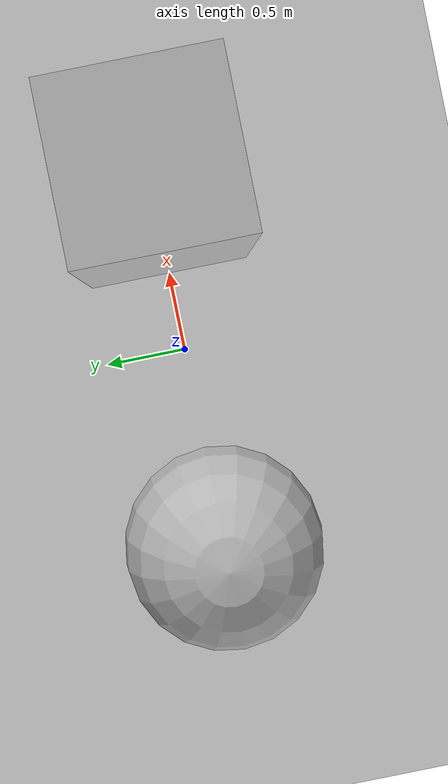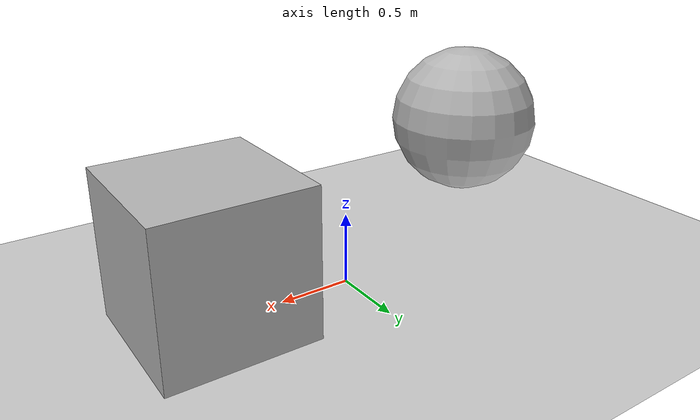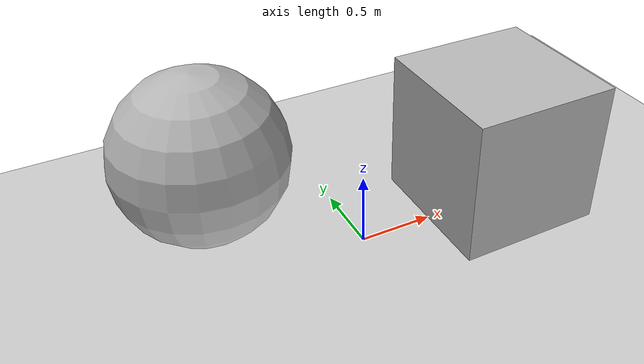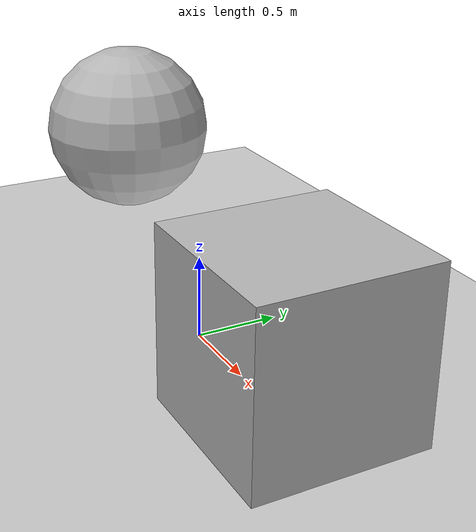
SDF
<?xml version="1.0" ?>
<sdf version="1.7">
  <world name="detailed_physics_world">
    <!-- Advanced physics parameters -->
    <physics type="ode">
      <max_step_size>0.001</max_step_size>
      <real_time_factor>1.0</real_time_factor>
      <gravity>0 0 -9.8</gravity>
      <ode>
        <solver>
          <type>quick</type>
          <iters>20</iters>
          <sor>1.3</sor>
        </solver>
        <constraints>
          <cfm>0.0</cfm>
          <erp>0.2</erp>
          <contact_max_correcting_vel>100.0</contact_max_correcting_vel>
          <contact_surface_layer>0.001</contact_surface_layer>
        </constraints>
      </ode>
    </physics>

    <!-- Ground plane -->
    <include>
      <uri>model://ground_plane</uri>
    </include>

    <!-- Sun for lighting -->
    <include>
      <uri>model://sun</uri>
    </include>

    <!-- Objects with different properties -->
    <model name="friction_box">
      <pose>1 0 0.5 0 0 0</pose>
      <link name="link">
        <collision name="collision">
          <geometry>
            <box>
              <size>1 1 1</size>
            </box>
          </geometry>
          <surface>
            <friction>
              <ode>
                <mu>1.0</mu>
                <mu2>1.0</mu2>
              </ode>
            </friction>
          </surface>
        </collision>
        <visual name="visual">
          <geometry>
            <box>
              <size>1 1 1</size>
            </box>
          </geometry>
        </visual>
        <inertial>
          <mass>1.0</mass>
          <inertia>
            <ixx>0.166667</ixx>
            <ixy>0</ixy>
            <ixz>0</ixz>
            <iyy>0.166667</iyy>
            <iyz>0</iyz>
            <izz>0.166667</izz>
          </inertia>
        </inertial>
      </link>
    </model>

    <model name="bouncy_sphere">
      <pose>-1 0 1 0 0 0</pose>
      <link name="link">
        <collision name="collision">
          <geometry>
            <sphere>
              <radius>0.5</radius>
            </sphere>
          </geometry>
          <surface>
            <bounce>
              <restitution_coefficient>0.8</restitution_coefficient>
              <threshold>100000</threshold>
            </bounce>
          </surface>
        </collision>
        <visual name="visual">
          <geometry>
            <sphere>
              <radius>0.5</radius>
            </sphere>
          </geometry>
        </visual>
        <inertial>
          <mass>1.0</mass>
          <inertia>
            <ixx>0.166667</ixx>
            <ixy>0</ixy>
            <ixz>0</ixz>
            <iyy>0.166667</iyy>
            <iyz>0</iyz>
            <izz>0.166667</izz>
          </inertia>
        </inertial>
      </link>
    </model>
  </world>
</sdf>
